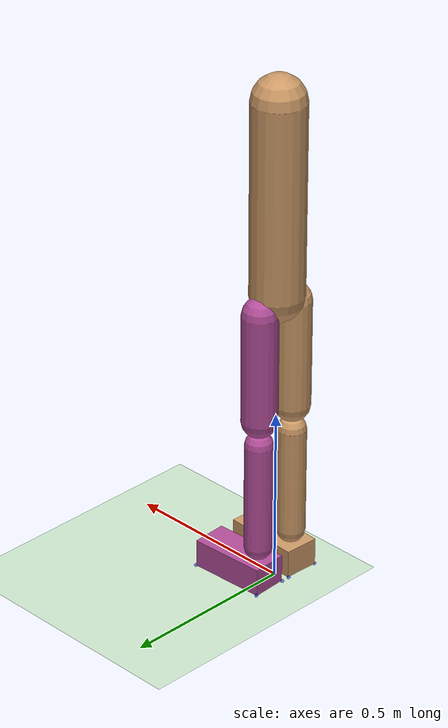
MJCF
<mujoco model="walker3d">
  <compiler angle="radian" coordinate="local" inertiafromgeom="false"/>
  <visual>
	    <scale framelength='0.5' framewidth='0.0075' forcewidth='0.0075' contactwidth='0.1' contactheight='0.01'/>
  </visual>
  <default>
    <joint armature="0.01" limited="true" />
    <motor ctrllimited="true" ctrlrange="-50 50" gear="1" forcelimited="true" forcerange="-50 50"/>
    <geom conaffinity="0" condim="3" contype="1" density="1000" friction=".7 .1 .1" rgba="0.8 0.6 .4 1"/>
  </default>
  <option integrator="RK4" timestep="0.001"/>
  <worldbody>
    <light cutoff="100" diffuse="1 1 1" dir="-0 0 -1.3" directional="true" exponent="1" pos="0 0 1.3" specular=".1 .1 .1"/>
    <geom conaffinity="1" condim="3" name="floor" pos="0 0 0" rgba="0.8 0.9 0.8 1" size="40 40 0.125" type="plane" material="MatPlane"/>
    <body name="torso" pos="0 0 0.86">
      <inertial pos="0 0 0.272" mass="27" diaginertia="1.25 2.0 0.75"/>
      <camera name="track" mode="trackcom" pos="0 -4 0" xyaxes="1 0 0 0 0 1"/>
      <joint armature="0" axis="1 0 0" damping="0" limited="false" name="com_x" pos="0 0 0" stiffness="0" type="slide"/>
      <joint armature="0" axis="0 1 0" damping="0" limited="false" name="com_y" pos="0 0 0" stiffness="0" type="slide"/>
      <joint armature="0" axis="0 0 1" damping="0" limited="false" name="com_z" pos="0 0 -0.86" ref="0.86" stiffness="0" type="slide"/>
      <joint armature="0" axis="1 0 0" damping="0" limited="false" name="trunk_rot_x" pos="0 0 0" stiffness="0" type="hinge"/>
      <joint armature="0" axis="0 1 0" damping="0" limited="false" name="trunk_rot_y" pos="0 0 0" stiffness="0" type="hinge"/>
      <joint armature="0" axis="0 0 1" damping="0" limited="false" name="trunk_rot_z" pos="0 0 0" stiffness="0" type="hinge"/>
      <geom friction="0.9" fromto="0 0 0 0 0 0.5439" name="torso_geom" size="0.075" type="capsule"/>
      <body name="right_thigh" pos="0 -0.06216 0">
        <inertial pos="0 0 -0.1554" mass="4.25" diaginertia="0.075 0.075 0.015"/>
        <joint axis="0 1 0" name="hip_joint_saggital_right" damping="28" range="-0.8727 0.8727" type="hinge"/>
        <joint axis="1 0 0" name="hip_joint_frontal_right" damping="28" range="-0.7854 0.0873" type="hinge"/>
        <geom friction="0.9" fromto="0 0 -0.03885 0 0 -0.35" name="thigh_geom" size="0.05" type="capsule"/>
        <body name="right_shank" pos="0 0 -0.3885">
          <inertial pos="0 0 -0.1554" mass="1.75" diaginertia="0.025 0.025 0.0015"/>
          <joint axis="0 1 0" name="knee_joint_right" damping="12" range="0. 2.6180" type="hinge"/>
          <geom friction="0.9" fromto="0 0 -0.0389 0 0 -0.35" name="leg_geom" size="0.04" type="capsule"/>
          <body name="right_foot" pos="0 0 -0.3885">
            <inertial pos="0.04662 0 -0.05439" mass="0.75" diaginertia="0.0015 0.003 0.0025"/>
            <joint axis="0 1 0" name="ankle_joint_right" damping="20"  range="-0.3491 0.6981" type="hinge"/>
            <geom friction="0.9" axisangle="0 0 1 -.05" name="right_foot" size="0.11 0.05 0.04" pos="0.0675 -0.005 -0.04" type="box"/>
            <site name='right_foot_front_left' type="sphere" size="0.005" pos="0.1775 0.04 -0.08" rgba="0 0 .99 0.5" />
            <site name='right_foot_front_right' type="sphere" size="0.005" pos="0.1775 -0.06 -0.08" rgba="0 0 .99 0.5" />
            <site name='right_foot_back_left' type="sphere" size="0.005" pos="-0.0425 0.05 -0.08" rgba="0 0 .99 0.5" />
            <site name='right_foot_back_right' type="sphere" size="0.005" pos="-0.0425 -0.05 -0.08" rgba="0 0 .99 0.5" />
          </body>
        </body>
      </body>
      <!-- copied and then replace thigh->thigh_left, leg->leg_left, foot->foot_right -->
      <body name="thigh_left" pos="0 0.06216 0">
        <inertial pos="0 0 -0.1554" mass="4.25" diaginertia="0.075 0.075 0.015"/>
        <joint axis="0 1 0" name="hip_joint_saggital_left" damping="28" range="-0.8727 0.8727" type="hinge"/>
        <joint axis="1 0 0" name="hip_joint_frontal_left" damping="28" range="-0.0873 0.7854" type="hinge"/>
        <geom friction="0.9" fromto="0 0 -0.03885 0 0 -0.35" name="thigh_left_geom" rgba=".7 .3 .6 1" size="0.05" type="capsule"/>
        <body name="shank_left" pos="0 0 -0.3885">
          <inertial pos="0 0 -0.1554" mass="1.75" diaginertia="0.025 0.025 0.0015"/>
          <joint axis="0 1 0" name="knee_left_joint" damping="12" range="0. 2.6180"  type="hinge"/>
          <geom friction="0.9" fromto="0 0 -0.03885 0 0 -0.35" name="leg_left_geom" rgba=".7 .3 .6 1" size="0.04" type="capsule"/>
          <body name="foot_left" pos="0 0 -0.3885">
            <inertial pos="0.04662 0 -0.05439" mass="0.75" diaginertia="0.0015 0.003 0.0025"/>
            <joint axis="0 1 0" name="ankle_left_joint" damping="20" range="-0.3491 0.6981" type="hinge"/>
            <geom friction="0.9" axisangle="0 0 1 .05" name="left_foot" size="0.11 0.05 0.04" pos="0.0675 0.005 -0.04" rgba=".7 .3 .6 1" type="box"/>
            <site name='left_foot_front_left' type="sphere" size="0.005" pos="0.1775 0.06 -0.08" rgba="0 0 .99 0.5" />
            <site name='left_foot_front_right' type="sphere" size="0.005" pos="0.1775 -0.04 -0.08" rgba="0 0 .99 0.5" />
            <site name='left_foot_back_left' type="sphere" size="0.005" pos="-0.0425 0.05 -0.08" rgba="0 0 .99 0.5" />
            <site name='left_foot_back_right' type="sphere" size="0.005" pos="-0.0425 -0.05 -0.08" rgba="0 0 .99 0.5" />
          </body>
        </body>
      </body>
    </body>
  </worldbody>
  <actuator>
    <motor joint="hip_joint_saggital_right"/>
    <motor joint="hip_joint_frontal_right"/>
    <motor joint="knee_joint_right"/>
    <motor joint="ankle_joint_right"/>
    <motor joint="hip_joint_saggital_left"/>
    <motor joint="hip_joint_frontal_left"/>
    <motor joint="knee_left_joint"/>
    <motor joint="ankle_left_joint"/>
  </actuator>
    <asset>
        <texture type="skybox" builtin="gradient" rgb1=".4 .5 .6" rgb2="0 0 0"
            width="100" height="100"/>
        <texture builtin="flat" height="1278" mark="cross" markrgb="1 1 1" name="texgeom" random="0.01" rgb1="0.8 0.6 0.4" rgb2="0.8 0.6 0.4" type="cube" width="127"/>
        <texture builtin="checker" height="100" name="texplane" rgb1="0 0 0" rgb2="0.8 0.8 0.8" type="2d" width="100"/>
        <material name="MatPlane" reflectance="0.5" shininess="1" specular="1" texrepeat="60 60" texture="texplane"/>
        <material name="geom" texture="texgeom" texuniform="true"/>
    </asset>
</mujoco>
